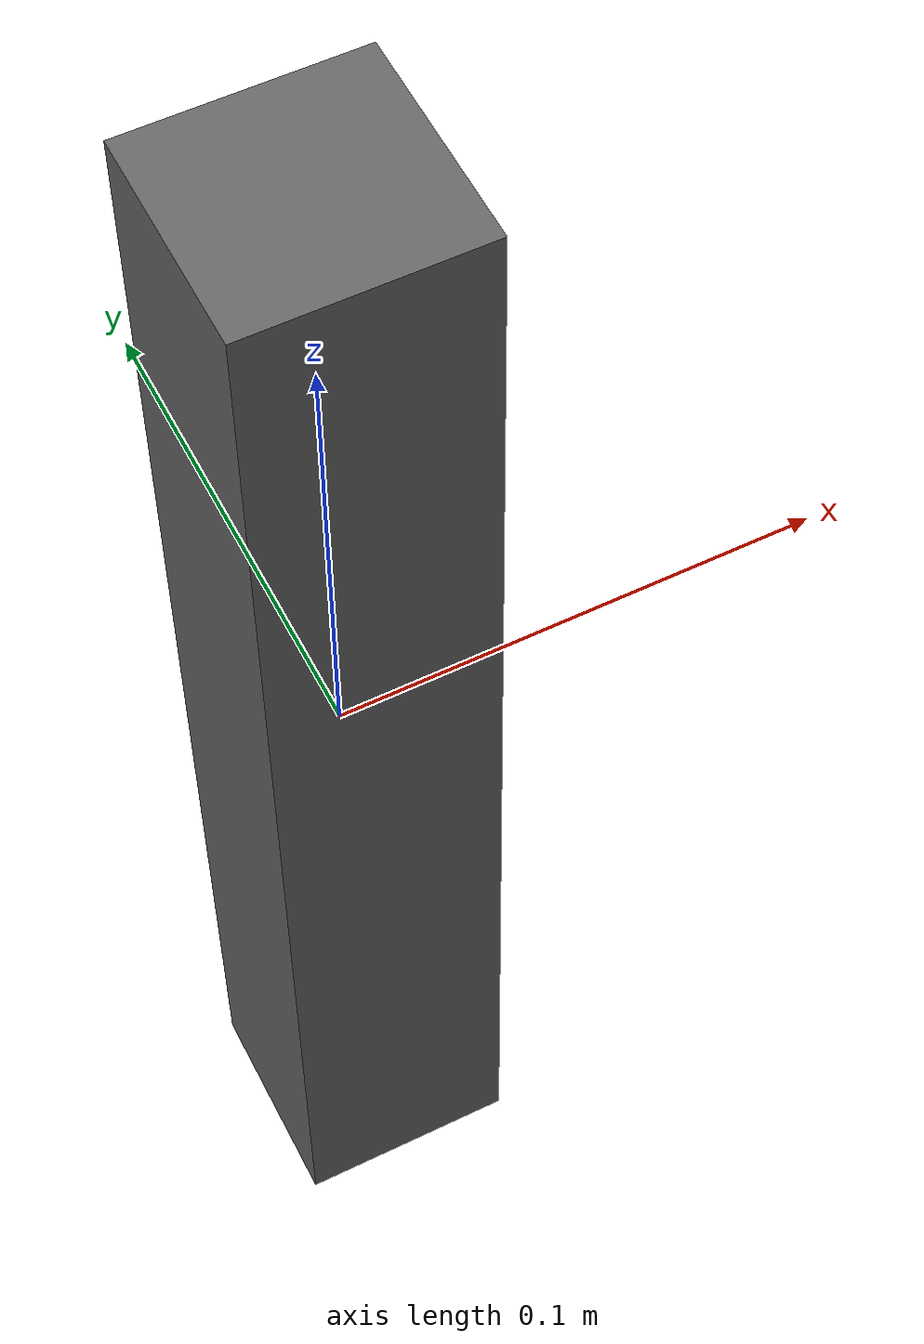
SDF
<?xml version="1.0" ?>
<sdf version="1.5">
 <!--pole-->
   <model name="pole">
    <link name="body">
    <inertial>
	<mass>2</mass>
	<inertia>
	 <ixx>0.00038054</ixx>
	 <iyy>0.00038054</iyy>
	 <izz>0.00064533</izz>
	 <ixy>0</ixy>
	 <ixz>0</ixz>
	 <iyz>0</iyz>
	</inertia>
       </inertial>

<!--pole Collision-->
     <collision name="pc1">
      <geometry>
        <box>
	  <size> 0.045 0.044 0.289849 </size>
	</box>
      </geometry>
     </collision>

 <!--pole Visual-->
    <visual name="pv1">
      <material>
        <diffuse>0.4 0.4 0.4 1.0</diffuse>
	<ambient>0.4 0.4 0.4 1.0</ambient>
	<specular>0.4 0.4 0.4 1.0</specular>
	<emissive>0.4 0.4 0.4 1.0</emissive>
      </material>
      <geometry>
        <box>
	  <size> 0.045 0.044 0.286849 </size>
	</box>
      </geometry>
     </visual>
  </link>
<static>1</static>
 </model>
</sdf>
